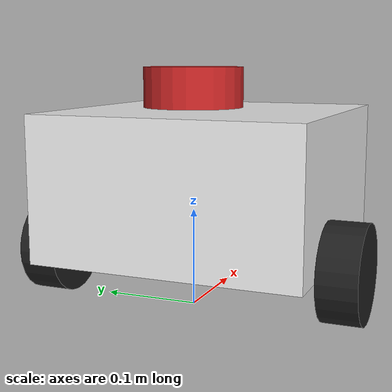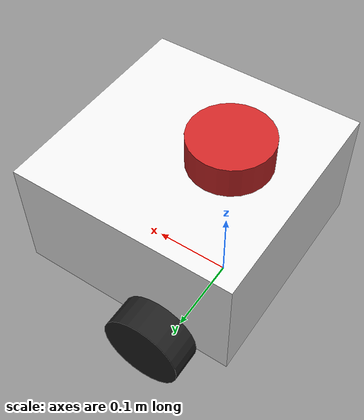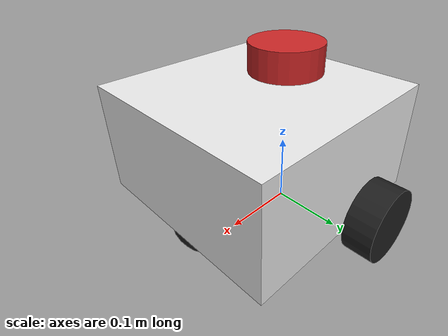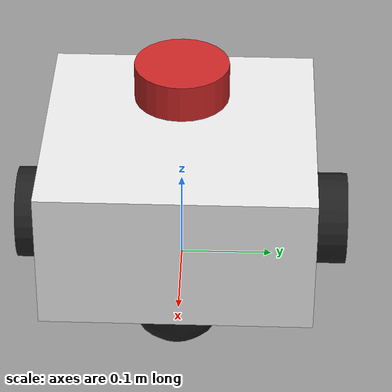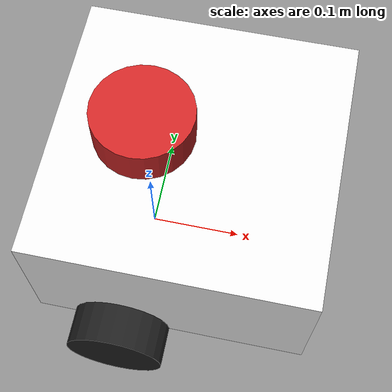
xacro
<?xml version="1.0"?>
<robot name="test_robot" xmlns:xacro="http://www.ros.org/wiki/xacro">
    <xacro:include filename="$(find model_description)/config/inertial.xacro" />

    <link name="base_link"></link>

    <joint name="chassis_joint" type="fixed">
        <parent link="base_link" />
        <child link="chassis" />
        <origin xyz="-0.1 0 0" />
    </joint>

    <link name="chassis">
        <visual>
            <origin xyz="0.15 0 0.075" rpy="0 0 0" />
            <geometry>
                <box size="0.28 0.28 0.15" />
            </geometry>
        </visual>
        <collision>
            <origin xyz="0.15 0 0.075" rpy="0 0 0" />
            <geometry>
                <box size="0.28 0.28 0.15" />
            </geometry>
        </collision>
        <xacro:inertial_box mass="1" x="0.28" y="0.28" z="0.15">
            <origin xyz="0.15 0 0.075" rpy="0 0 0" />
        </xacro:inertial_box>
    </link>
    <gazebo reference="chassis">
        <material>Gazebo/White</material>
    </gazebo>
    <!-- left wheel -->
    <joint name="left_wheel_joint" type="continuous">
        <parent link="base_link" />
        <child link="left_wheel" />
        <origin xyz="0 0.16 0" rpy="-${pi/2} 0 0" />
        <axis xyz="0 0 1" />
    </joint>

    <link name="left_wheel">
        <visual>
            <geometry>
                <cylinder length="0.04" radius="0.05" />
            </geometry>
            <material name="black" />
        </visual>
        <collision>
            <geometry>
                <cylinder length="0.04" radius="0.05" />
            </geometry>
        </collision>
        <xacro:inertial_cylinder mass="1.5" length="0.05" radius="0.05">
            <origin xyz="0 0 0" rpy="0 0 0" />
        </xacro:inertial_cylinder>
    </link>
    <gazebo reference="left_wheel">
        <material>Gazebo/White</material>
    </gazebo>
    <!-- right wheel -->
    <joint name="right_wheel_joint" type="continuous">
        <parent link="base_link" />
        <child link="right_wheel" />
        <origin xyz="0 -0.16 0" rpy="${pi/2} 0 0" />
        <axis xyz="0 0 -1" />
    </joint>

    <link name="right_wheel">
        <visual>
            <geometry>
                <cylinder length="0.04" radius="0.05" />
            </geometry>
            <material name="black" />
        </visual>
        <collision>
            <geometry>
                <cylinder length="0.04" radius="0.05" />
            </geometry>
        </collision>
        <xacro:inertial_cylinder mass="1.5" length="0.05" radius="0.05">
            <origin xyz="0 0 0" rpy="0 0 0" />
        </xacro:inertial_cylinder>
    </link>
    <gazebo reference="right_wheel">
        <material>Gazebo/White</material>
    </gazebo>
    <!-- caster wheel -->
    <joint name="caster_wheel_joint" type="continuous">
        <parent link="chassis" />
        <child link="caster_wheel" />
        <origin xyz="0.24 0 0" rpy="0 0 0" />
        <axis xyz="0 1 0" />
        <limit effort="100" velocity="100" />
        <dynamics damping="0.001" />
    </joint>

    <link name="caster_wheel">
        <visual>
            <geometry>
                <sphere radius="0.05" />
            </geometry>
            <material name="black" />
        </visual>
        <collision>
            <geometry>
                <sphere radius="0.05" />
            </geometry>
        </collision>
        <xacro:inertial_sphere mass="0.1" radius="0.05">
            <origin xyz="0 0 0" rpy="0 0 0" />
        </xacro:inertial_sphere>
    </link>
    <gazebo reference="caster_wheel">
        <material>Gazebo/White</material>
    </gazebo>

    <link name="base_footprint" />

    <joint name="base_joint" type="fixed">
        <parent link="base_footprint" />
        <child link="base_link" />
        <origin xyz="0 0 0.05" rpy="0 0 0" />
    </joint>
    <gazebo>
        <plugin name='diff_drive' filename='libgazebo_ros_diff_drive.so'>
            <legacyMode>true</legacyMode>
            <rosDebugLevel>Debug</rosDebugLevel>
            <publishWheelTF>false</publishWheelTF>
            <robotNamespace>/</robotNamespace>
            <publishTf>1</publishTf>
            <publishWheelJointState>false</publishWheelJointState>
            <alwaysOn>true</alwaysOn>
            <updateRate>100.0</updateRate>

            <leftJoint>left_wheel_joint</leftJoint>
            <rightJoint>right_wheel_joint</rightJoint>
            <wheelSeparation>0.3</wheelSeparation>
            <wheelDiameter>0.1</wheelDiameter>
            <broadcastTF>1</broadcastTF>
            <wheelTorque>10</wheelTorque>
            <wheelAcceleration>0.5</wheelAcceleration>
            <commandTopic>cmd_vel</commandTopic>
            <odometryFrame>odom</odometryFrame>
            <odometryTopic>odom</odometryTopic>
            <robotBaseFrame>base_footprint</robotBaseFrame>
        </plugin>
    </gazebo>

    <!-- lidar -->
    <joint name="laser_joint" type="fixed">
        <parent link="chassis" />
        <child link="laser_frame" />
        <origin xyz="0.1 0 0.175" rpy="0 0 0" />
    </joint>
    <link name="laser_frame">
        <visual>
            <geometry>
                <cylinder radius="0.05" length="0.04" />
            </geometry>
            <material name="red" />
        </visual>
        <collision>
            <geometry>
                <cylinder radius="0.05" length="0.04" />
            </geometry>
        </collision>
        <xacro:inertial_cylinder mass="0.1" length="0.04" radius="0.05">
            <origin xyz="0 0 0" rpy="0 0 0" />
        </xacro:inertial_cylinder>
    </link>
    <gazebo reference="laser_frame">
        <material>Gazebo/Red</material>

        <sensor name="laser" type="ray">
            <pose> 0 0 0 0 0 0 </pose>
            <visualize>true</visualize>
            <update_rate>10</update_rate>
            <ray>
                <scan>
                    <horizontal>
                        <samples>360</samples>
                        <min_angle>-3.14</min_angle>
                        <max_angle>3.14</max_angle>
                    </horizontal>
                </scan>
                <range>
                    <min>0.3</min>
                    <max>12</max>
                </range>
                <noise>
                    <type>gaussian</type>
                    <mean>0.005</mean>
                    <stddev>0.002</stddev>
                </noise>
            </ray>
            <plugin name="sensor_plugin" filename="libgazebo_ros_laser.so">
                <topicName>/scan</topicName>
                <frameName>laser_frame</frameName>
              </plugin>
        </sensor>
    </gazebo>
    <!-- camera link -->
</robot>
